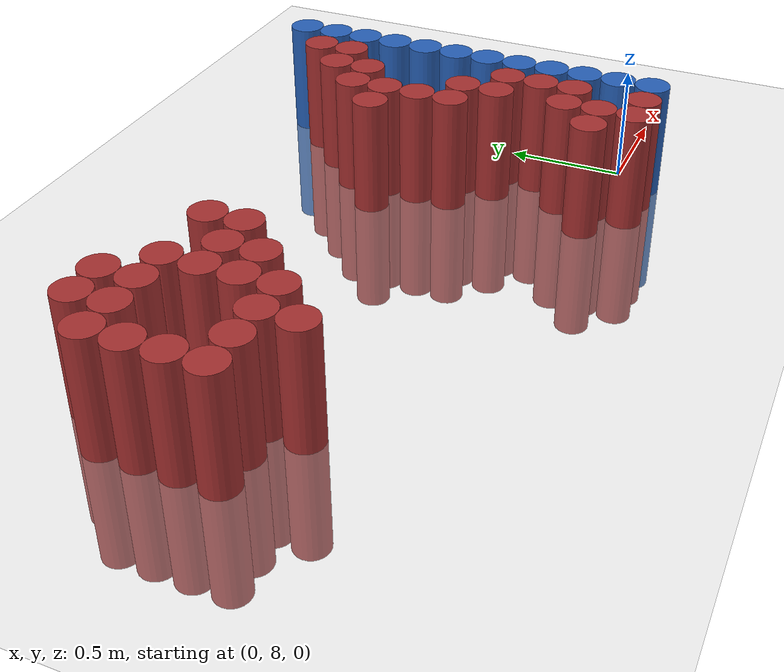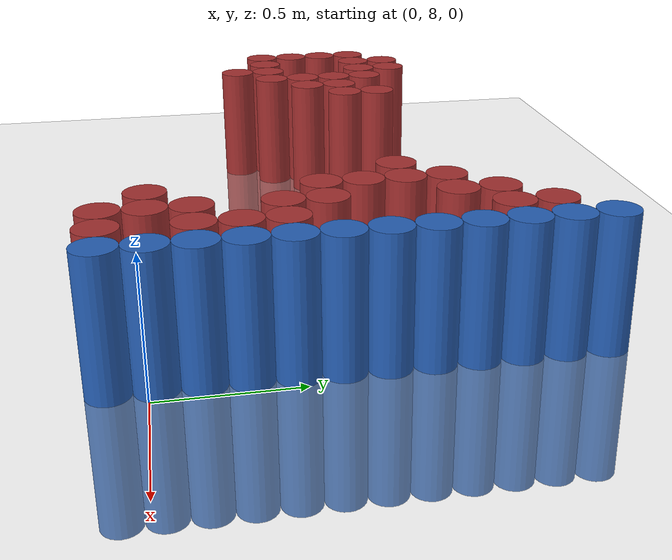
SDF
<sdf version="1.6">
 <world name="default">
  <model name="ground_plane">
   <static>1</static>
   <link name="link">
    <collision name="collision">
     <geometry><plane><normal>0 0 1</normal><size>100 100</size></plane></geometry>
     <surface><friction><ode><mu>100</mu><mu2>50</mu2></ode></friction></surface>
    </collision>
    <visual name="visual">
     <cast_shadows>0</cast_shadows>
     <geometry><plane><normal>0 0 1</normal><size>100 100</size></plane></geometry>
     <material>
      <script><uri>file://media/materials/scripts/gazebo.material</uri><name>Gazebo/Grey</name></script>
     </material>
    </visual>
   </link>
  </model>
  <model name="unit_cylinder_234">
   <static>1</static>
   <pose>-2.475000 8.625000 0.000000 0.000000 0.000000 0.000000</pose>
   <link name="link">
    <inertial>
     <mass>1</mass>
     <inertia><ixx>0.145833</ixx><ixy>0</ixy><ixz>0</ixz><iyy>0.145833</iyy><iyz>0</iyz><izz>0.125</izz></inertia>
    </inertial>
    <collision name="collision">
     <geometry><cylinder><radius>0.075000</radius><length>1</length></cylinder></geometry>
    </collision>
    <visual name="visual">
     <geometry><cylinder><radius>0.075000</radius><length>1</length></cylinder></geometry>
     <material>
      <ambient>0.648000 0.192000 0.192000 1</ambient>
      <diffuse>0.648000 0.192000 0.192000 1</diffuse>
     </material>
     <material>
      <script><name>Gazebo/Grey</name><uri>file://media/materials/scripts/gazebo.material</uri></script>
     </material>
    </visual>
   </link>
  </model>
  <model name="unit_cylinder_235">
   <static>1</static>
   <pose>-2.475000 8.775000 0.000000 0.000000 0.000000 0.000000</pose>
   <link name="link">
    <inertial>
     <mass>1</mass>
     <inertia><ixx>0.145833</ixx><ixy>0</ixy><ixz>0</ixz><iyy>0.145833</iyy><iyz>0</iyz><izz>0.125</izz></inertia>
    </inertial>
    <collision name="collision">
     <geometry><cylinder><radius>0.075000</radius><length>1</length></cylinder></geometry>
    </collision>
    <visual name="visual">
     <geometry><cylinder><radius>0.075000</radius><length>1</length></cylinder></geometry>
     <material>
      <ambient>0.648000 0.192000 0.192000 1</ambient>
      <diffuse>0.648000 0.192000 0.192000 1</diffuse>
     </material>
     <material>
      <script><name>Gazebo/Grey</name><uri>file://media/materials/scripts/gazebo.material</uri></script>
     </material>
    </visual>
   </link>
  </model>
  <model name="unit_cylinder_236">
   <static>1</static>
   <pose>-2.475000 8.925000 0.000000 0.000000 0.000000 0.000000</pose>
   <link name="link">
    <inertial>
     <mass>1</mass>
     <inertia><ixx>0.145833</ixx><ixy>0</ixy><ixz>0</ixz><iyy>0.145833</iyy><iyz>0</iyz><izz>0.125</izz></inertia>
    </inertial>
    <collision name="collision">
     <geometry><cylinder><radius>0.075000</radius><length>1</length></cylinder></geometry>
    </collision>
    <visual name="visual">
     <geometry><cylinder><radius>0.075000</radius><length>1</length></cylinder></geometry>
     <material>
      <ambient>0.648000 0.192000 0.192000 1</ambient>
      <diffuse>0.648000 0.192000 0.192000 1</diffuse>
     </material>
     <material>
      <script><name>Gazebo/Grey</name><uri>file://media/materials/scripts/gazebo.material</uri></script>
     </material>
    </visual>
   </link>
  </model>
  <model name="unit_cylinder_237">
   <static>1</static>
   <pose>-2.475000 9.075000 0.000000 0.000000 0.000000 0.000000</pose>
   <link name="link">
    <inertial>
     <mass>1</mass>
     <inertia><ixx>0.145833</ixx><ixy>0</ixy><ixz>0</ixz><iyy>0.145833</iyy><iyz>0</iyz><izz>0.125</izz></inertia>
    </inertial>
    <collision name="collision">
     <geometry><cylinder><radius>0.075000</radius><length>1</length></cylinder></geometry>
    </collision>
    <visual name="visual">
     <geometry><cylinder><radius>0.075000</radius><length>1</length></cylinder></geometry>
     <material>
      <ambient>0.648000 0.192000 0.192000 1</ambient>
      <diffuse>0.648000 0.192000 0.192000 1</diffuse>
     </material>
     <material>
      <script><name>Gazebo/Grey</name><uri>file://media/materials/scripts/gazebo.material</uri></script>
     </material>
    </visual>
   </link>
  </model>
  <model name="unit_cylinder_241">
   <static>1</static>
   <pose>-2.325000 8.625000 0.000000 0.000000 0.000000 0.000000</pose>
   <link name="link">
    <inertial>
     <mass>1</mass>
     <inertia><ixx>0.145833</ixx><ixy>0</ixy><ixz>0</ixz><iyy>0.145833</iyy><iyz>0</iyz><izz>0.125</izz></inertia>
    </inertial>
    <collision name="collision">
     <geometry><cylinder><radius>0.075000</radius><length>1</length></cylinder></geometry>
    </collision>
    <visual name="visual">
     <geometry><cylinder><radius>0.075000</radius><length>1</length></cylinder></geometry>
     <material>
      <ambient>0.648000 0.192000 0.192000 1</ambient>
      <diffuse>0.648000 0.192000 0.192000 1</diffuse>
     </material>
     <material>
      <script><name>Gazebo/Grey</name><uri>file://media/materials/scripts/gazebo.material</uri></script>
     </material>
    </visual>
   </link>
  </model>
  <model name="unit_cylinder_242">
   <static>1</static>
   <pose>-2.325000 9.075000 0.000000 0.000000 0.000000 0.000000</pose>
   <link name="link">
    <inertial>
     <mass>1</mass>
     <inertia><ixx>0.145833</ixx><ixy>0</ixy><ixz>0</ixz><iyy>0.145833</iyy><iyz>0</iyz><izz>0.125</izz></inertia>
    </inertial>
    <collision name="collision">
     <geometry><cylinder><radius>0.075000</radius><length>1</length></cylinder></geometry>
    </collision>
    <visual name="visual">
     <geometry><cylinder><radius>0.075000</radius><length>1</length></cylinder></geometry>
     <material>
      <ambient>0.648000 0.192000 0.192000 1</ambient>
      <diffuse>0.648000 0.192000 0.192000 1</diffuse>
     </material>
     <material>
      <script><name>Gazebo/Grey</name><uri>file://media/materials/scripts/gazebo.material</uri></script>
     </material>
    </visual>
   </link>
  </model>
  <model name="unit_cylinder_243">
   <static>1</static>
   <pose>-2.325000 9.225000 0.000000 0.000000 0.000000 0.000000</pose>
   <link name="link">
    <inertial>
     <mass>1</mass>
     <inertia><ixx>0.145833</ixx><ixy>0</ixy><ixz>0</ixz><iyy>0.145833</iyy><iyz>0</iyz><izz>0.125</izz></inertia>
    </inertial>
    <collision name="collision">
     <geometry><cylinder><radius>0.075000</radius><length>1</length></cylinder></geometry>
    </collision>
    <visual name="visual">
     <geometry><cylinder><radius>0.075000</radius><length>1</length></cylinder></geometry>
     <material>
      <ambient>0.648000 0.192000 0.192000 1</ambient>
      <diffuse>0.648000 0.192000 0.192000 1</diffuse>
     </material>
     <material>
      <script><name>Gazebo/Grey</name><uri>file://media/materials/scripts/gazebo.material</uri></script>
     </material>
    </visual>
   </link>
  </model>
  <model name="unit_cylinder_248">
   <static>1</static>
   <pose>-2.175000 8.475000 0.000000 0.000000 0.000000 0.000000</pose>
   <link name="link">
    <inertial>
     <mass>1</mass>
     <inertia><ixx>0.145833</ixx><ixy>0</ixy><ixz>0</ixz><iyy>0.145833</iyy><iyz>0</iyz><izz>0.125</izz></inertia>
    </inertial>
    <collision name="collision">
     <geometry><cylinder><radius>0.075000</radius><length>1</length></cylinder></geometry>
    </collision>
    <visual name="visual">
     <geometry><cylinder><radius>0.075000</radius><length>1</length></cylinder></geometry>
     <material>
      <ambient>0.648000 0.192000 0.192000 1</ambient>
      <diffuse>0.648000 0.192000 0.192000 1</diffuse>
     </material>
     <material>
      <script><name>Gazebo/Grey</name><uri>file://media/materials/scripts/gazebo.material</uri></script>
     </material>
    </visual>
   </link>
  </model>
  <model name="unit_cylinder_249">
   <static>1</static>
   <pose>-2.175000 8.625000 0.000000 0.000000 0.000000 0.000000</pose>
   <link name="link">
    <inertial>
     <mass>1</mass>
     <inertia><ixx>0.145833</ixx><ixy>0</ixy><ixz>0</ixz><iyy>0.145833</iyy><iyz>0</iyz><izz>0.125</izz></inertia>
    </inertial>
    <collision name="collision">
     <geometry><cylinder><radius>0.075000</radius><length>1</length></cylinder></geometry>
    </collision>
    <visual name="visual">
     <geometry><cylinder><radius>0.075000</radius><length>1</length></cylinder></geometry>
     <material>
      <ambient>0.648000 0.192000 0.192000 1</ambient>
      <diffuse>0.648000 0.192000 0.192000 1</diffuse>
     </material>
     <material>
      <script><name>Gazebo/Grey</name><uri>file://media/materials/scripts/gazebo.material</uri></script>
     </material>
    </visual>
   </link>
  </model>
  <model name="unit_cylinder_250">
   <static>1</static>
   <pose>-2.175000 9.075000 0.000000 0.000000 0.000000 0.000000</pose>
   <link name="link">
    <inertial>
     <mass>1</mass>
     <inertia><ixx>0.145833</ixx><ixy>0</ixy><ixz>0</ixz><iyy>0.145833</iyy><iyz>0</iyz><izz>0.125</izz></inertia>
    </inertial>
    <collision name="collision">
     <geometry><cylinder><radius>0.075000</radius><length>1</length></cylinder></geometry>
    </collision>
    <visual name="visual">
     <geometry><cylinder><radius>0.075000</radius><length>1</length></cylinder></geometry>
     <material>
      <ambient>0.648000 0.192000 0.192000 1</ambient>
      <diffuse>0.648000 0.192000 0.192000 1</diffuse>
     </material>
     <material>
      <script><name>Gazebo/Grey</name><uri>file://media/materials/scripts/gazebo.material</uri></script>
     </material>
    </visual>
   </link>
  </model>
  <model name="unit_cylinder_251">
   <static>1</static>
   <pose>-2.175000 9.225000 0.000000 0.000000 0.000000 0.000000</pose>
   <link name="link">
    <inertial>
     <mass>1</mass>
     <inertia><ixx>0.145833</ixx><ixy>0</ixy><ixz>0</ixz><iyy>0.145833</iyy><iyz>0</iyz><izz>0.125</izz></inertia>
    </inertial>
    <collision name="collision">
     <geometry><cylinder><radius>0.075000</radius><length>1</length></cylinder></geometry>
    </collision>
    <visual name="visual">
     <geometry><cylinder><radius>0.075000</radius><length>1</length></cylinder></geometry>
     <material>
      <ambient>0.648000 0.192000 0.192000 1</ambient>
      <diffuse>0.648000 0.192000 0.192000 1</diffuse>
     </material>
     <material>
      <script><name>Gazebo/Grey</name><uri>file://media/materials/scripts/gazebo.material</uri></script>
     </material>
    </visual>
   </link>
  </model>
  <model name="unit_cylinder_256">
   <static>1</static>
   <pose>-2.025000 8.625000 0.000000 0.000000 0.000000 0.000000</pose>
   <link name="link">
    <inertial>
     <mass>1</mass>
     <inertia><ixx>0.145833</ixx><ixy>0</ixy><ixz>0</ixz><iyy>0.145833</iyy><iyz>0</iyz><izz>0.125</izz></inertia>
    </inertial>
    <collision name="collision">
     <geometry><cylinder><radius>0.075000</radius><length>1</length></cylinder></geometry>
    </collision>
    <visual name="visual">
     <geometry><cylinder><radius>0.075000</radius><length>1</length></cylinder></geometry>
     <material>
      <ambient>0.648000 0.192000 0.192000 1</ambient>
      <diffuse>0.648000 0.192000 0.192000 1</diffuse>
     </material>
     <material>
      <script><name>Gazebo/Grey</name><uri>file://media/materials/scripts/gazebo.material</uri></script>
     </material>
    </visual>
   </link>
  </model>
  <model name="unit_cylinder_257">
   <static>1</static>
   <pose>-2.025000 8.775000 0.000000 0.000000 0.000000 0.000000</pose>
   <link name="link">
    <inertial>
     <mass>1</mass>
     <inertia><ixx>0.145833</ixx><ixy>0</ixy><ixz>0</ixz><iyy>0.145833</iyy><iyz>0</iyz><izz>0.125</izz></inertia>
    </inertial>
    <collision name="collision">
     <geometry><cylinder><radius>0.075000</radius><length>1</length></cylinder></geometry>
    </collision>
    <visual name="visual">
     <geometry><cylinder><radius>0.075000</radius><length>1</length></cylinder></geometry>
     <material>
      <ambient>0.648000 0.192000 0.192000 1</ambient>
      <diffuse>0.648000 0.192000 0.192000 1</diffuse>
     </material>
     <material>
      <script><name>Gazebo/Grey</name><uri>file://media/materials/scripts/gazebo.material</uri></script>
     </material>
    </visual>
   </link>
  </model>
  <model name="unit_cylinder_258">
   <static>1</static>
   <pose>-2.025000 8.925000 0.000000 0.000000 0.000000 0.000000</pose>
   <link name="link">
    <inertial>
     <mass>1</mass>
     <inertia><ixx>0.145833</ixx><ixy>0</ixy><ixz>0</ixz><iyy>0.145833</iyy><iyz>0</iyz><izz>0.125</izz></inertia>
    </inertial>
    <collision name="collision">
     <geometry><cylinder><radius>0.075000</radius><length>1</length></cylinder></geometry>
    </collision>
    <visual name="visual">
     <geometry><cylinder><radius>0.075000</radius><length>1</length></cylinder></geometry>
     <material>
      <ambient>0.648000 0.192000 0.192000 1</ambient>
      <diffuse>0.648000 0.192000 0.192000 1</diffuse>
     </material>
     <material>
      <script><name>Gazebo/Grey</name><uri>file://media/materials/scripts/gazebo.material</uri></script>
     </material>
    </visual>
   </link>
  </model>
  <model name="unit_cylinder_259">
   <static>1</static>
   <pose>-2.025000 9.075000 0.000000 0.000000 0.000000 0.000000</pose>
   <link name="link">
    <inertial>
     <mass>1</mass>
     <inertia><ixx>0.145833</ixx><ixy>0</ixy><ixz>0</ixz><iyy>0.145833</iyy><iyz>0</iyz><izz>0.125</izz></inertia>
    </inertial>
    <collision name="collision">
     <geometry><cylinder><radius>0.075000</radius><length>1</length></cylinder></geometry>
    </collision>
    <visual name="visual">
     <geometry><cylinder><radius>0.075000</radius><length>1</length></cylinder></geometry>
     <material>
      <ambient>0.648000 0.192000 0.192000 1</ambient>
      <diffuse>0.648000 0.192000 0.192000 1</diffuse>
     </material>
     <material>
      <script><name>Gazebo/Grey</name><uri>file://media/materials/scripts/gazebo.material</uri></script>
     </material>
    </visual>
   </link>
  </model>
  <model name="unit_cylinder_267">
   <static>1</static>
   <pose>-1.875000 8.775000 0.000000 0.000000 0.000000 0.000000</pose>
   <link name="link">
    <inertial>
     <mass>1</mass>
     <inertia><ixx>0.145833</ixx><ixy>0</ixy><ixz>0</ixz><iyy>0.145833</iyy><iyz>0</iyz><izz>0.125</izz></inertia>
    </inertial>
    <collision name="collision">
     <geometry><cylinder><radius>0.075000</radius><length>1</length></cylinder></geometry>
    </collision>
    <visual name="visual">
     <geometry><cylinder><radius>0.075000</radius><length>1</length></cylinder></geometry>
     <material>
      <ambient>0.648000 0.192000 0.192000 1</ambient>
      <diffuse>0.648000 0.192000 0.192000 1</diffuse>
     </material>
     <material>
      <script><name>Gazebo/Grey</name><uri>file://media/materials/scripts/gazebo.material</uri></script>
     </material>
    </visual>
   </link>
  </model>
  <model name="unit_cylinder_268">
   <static>1</static>
   <pose>-1.875000 8.925000 0.000000 0.000000 0.000000 0.000000</pose>
   <link name="link">
    <inertial>
     <mass>1</mass>
     <inertia><ixx>0.145833</ixx><ixy>0</ixy><ixz>0</ixz><iyy>0.145833</iyy><iyz>0</iyz><izz>0.125</izz></inertia>
    </inertial>
    <collision name="collision">
     <geometry><cylinder><radius>0.075000</radius><length>1</length></cylinder></geometry>
    </collision>
    <visual name="visual">
     <geometry><cylinder><radius>0.075000</radius><length>1</length></cylinder></geometry>
     <material>
      <ambient>0.648000 0.192000 0.192000 1</ambient>
      <diffuse>0.648000 0.192000 0.192000 1</diffuse>
     </material>
     <material>
      <script><name>Gazebo/Grey</name><uri>file://media/materials/scripts/gazebo.material</uri></script>
     </material>
    </visual>
   </link>
  </model>
  <model name="unit_cylinder_274">
   <static>1</static>
   <pose>-1.725000 8.925000 0.000000 0.000000 0.000000 0.000000</pose>
   <link name="link">
    <inertial>
     <mass>1</mass>
     <inertia><ixx>0.145833</ixx><ixy>0</ixy><ixz>0</ixz><iyy>0.145833</iyy><iyz>0</iyz><izz>0.125</izz></inertia>
    </inertial>
    <collision name="collision">
     <geometry><cylinder><radius>0.075000</radius><length>1</length></cylinder></geometry>
    </collision>
    <visual name="visual">
     <geometry><cylinder><radius>0.075000</radius><length>1</length></cylinder></geometry>
     <material>
      <ambient>0.648000 0.192000 0.192000 1</ambient>
      <diffuse>0.648000 0.192000 0.192000 1</diffuse>
     </material>
     <material>
      <script><name>Gazebo/Grey</name><uri>file://media/materials/scripts/gazebo.material</uri></script>
     </material>
    </visual>
   </link>
  </model>
  <model name="unit_cylinder_275">
   <static>1</static>
   <pose>-1.725000 9.075000 0.000000 0.000000 0.000000 0.000000</pose>
   <link name="link">
    <inertial>
     <mass>1</mass>
     <inertia><ixx>0.145833</ixx><ixy>0</ixy><ixz>0</ixz><iyy>0.145833</iyy><iyz>0</iyz><izz>0.125</izz></inertia>
    </inertial>
    <collision name="collision">
     <geometry><cylinder><radius>0.075000</radius><length>1</length></cylinder></geometry>
    </collision>
    <visual name="visual">
     <geometry><cylinder><radius>0.075000</radius><length>1</length></cylinder></geometry>
     <material>
      <ambient>0.648000 0.192000 0.192000 1</ambient>
      <diffuse>0.648000 0.192000 0.192000 1</diffuse>
     </material>
     <material>
      <script><name>Gazebo/Grey</name><uri>file://media/materials/scripts/gazebo.material</uri></script>
     </material>
    </visual>
   </link>
  </model>
  <model name="unit_cylinder_283">
   <static>1</static>
   <pose>-0.675000 8.925000 0.000000 0.000000 0.000000 0.000000</pose>
   <link name="link">
    <inertial>
     <mass>1</mass>
     <inertia><ixx>0.145833</ixx><ixy>0</ixy><ixz>0</ixz><iyy>0.145833</iyy><iyz>0</iyz><izz>0.125</izz></inertia>
    </inertial>
    <collision name="collision">
     <geometry><cylinder><radius>0.075000</radius><length>1</length></cylinder></geometry>
    </collision>
    <visual name="visual">
     <geometry><cylinder><radius>0.075000</radius><length>1</length></cylinder></geometry>
     <material>
      <ambient>0.648000 0.192000 0.192000 1</ambient>
      <diffuse>0.648000 0.192000 0.192000 1</diffuse>
     </material>
     <material>
      <script><name>Gazebo/Grey</name><uri>file://media/materials/scripts/gazebo.material</uri></script>
     </material>
    </visual>
   </link>
  </model>
  <model name="unit_cylinder_288">
   <static>1</static>
   <pose>-0.525000 8.025000 0.000000 0.000000 0.000000 0.000000</pose>
   <link name="link">
    <inertial>
     <mass>1</mass>
     <inertia><ixx>0.145833</ixx><ixy>0</ixy><ixz>0</ixz><iyy>0.145833</iyy><iyz>0</iyz><izz>0.125</izz></inertia>
    </inertial>
    <collision name="collision">
     <geometry><cylinder><radius>0.075000</radius><length>1</length></cylinder></geometry>
    </collision>
    <visual name="visual">
     <geometry><cylinder><radius>0.075000</radius><length>1</length></cylinder></geometry>
     <material>
      <ambient>0.648000 0.192000 0.192000 1</ambient>
      <diffuse>0.648000 0.192000 0.192000 1</diffuse>
     </material>
     <material>
      <script><name>Gazebo/Grey</name><uri>file://media/materials/scripts/gazebo.material</uri></script>
     </material>
    </visual>
   </link>
  </model>
  <model name="unit_cylinder_289">
   <static>1</static>
   <pose>-0.525000 8.625000 0.000000 0.000000 0.000000 0.000000</pose>
   <link name="link">
    <inertial>
     <mass>1</mass>
     <inertia><ixx>0.145833</ixx><ixy>0</ixy><ixz>0</ixz><iyy>0.145833</iyy><iyz>0</iyz><izz>0.125</izz></inertia>
    </inertial>
    <collision name="collision">
     <geometry><cylinder><radius>0.075000</radius><length>1</length></cylinder></geometry>
    </collision>
    <visual name="visual">
     <geometry><cylinder><radius>0.075000</radius><length>1</length></cylinder></geometry>
     <material>
      <ambient>0.648000 0.192000 0.192000 1</ambient>
      <diffuse>0.648000 0.192000 0.192000 1</diffuse>
     </material>
     <material>
      <script><name>Gazebo/Grey</name><uri>file://media/materials/scripts/gazebo.material</uri></script>
     </material>
    </visual>
   </link>
  </model>
  <model name="unit_cylinder_290">
   <static>1</static>
   <pose>-0.525000 8.775000 0.000000 0.000000 0.000000 0.000000</pose>
   <link name="link">
    <inertial>
     <mass>1</mass>
     <inertia><ixx>0.145833</ixx><ixy>0</ixy><ixz>0</ixz><iyy>0.145833</iyy><iyz>0</iyz><izz>0.125</izz></inertia>
    </inertial>
    <collision name="collision">
     <geometry><cylinder><radius>0.075000</radius><length>1</length></cylinder></geometry>
    </collision>
    <visual name="visual">
     <geometry><cylinder><radius>0.075000</radius><length>1</length></cylinder></geometry>
     <material>
      <ambient>0.648000 0.192000 0.192000 1</ambient>
      <diffuse>0.648000 0.192000 0.192000 1</diffuse>
     </material>
     <material>
      <script><name>Gazebo/Grey</name><uri>file://media/materials/scripts/gazebo.material</uri></script>
     </material>
    </visual>
   </link>
  </model>
  <model name="unit_cylinder_291">
   <static>1</static>
   <pose>-0.525000 8.925000 0.000000 0.000000 0.000000 0.000000</pose>
   <link name="link">
    <inertial>
     <mass>1</mass>
     <inertia><ixx>0.145833</ixx><ixy>0</ixy><ixz>0</ixz><iyy>0.145833</iyy><iyz>0</iyz><izz>0.125</izz></inertia>
    </inertial>
    <collision name="collision">
     <geometry><cylinder><radius>0.075000</radius><length>1</length></cylinder></geometry>
    </collision>
    <visual name="visual">
     <geometry><cylinder><radius>0.075000</radius><length>1</length></cylinder></geometry>
     <material>
      <ambient>0.648000 0.192000 0.192000 1</ambient>
      <diffuse>0.648000 0.192000 0.192000 1</diffuse>
     </material>
     <material>
      <script><name>Gazebo/Grey</name><uri>file://media/materials/scripts/gazebo.material</uri></script>
     </material>
    </visual>
   </link>
  </model>
  <model name="unit_cylinder_292">
   <static>1</static>
   <pose>-0.525000 9.075000 0.000000 0.000000 0.000000 0.000000</pose>
   <link name="link">
    <inertial>
     <mass>1</mass>
     <inertia><ixx>0.145833</ixx><ixy>0</ixy><ixz>0</ixz><iyy>0.145833</iyy><iyz>0</iyz><izz>0.125</izz></inertia>
    </inertial>
    <collision name="collision">
     <geometry><cylinder><radius>0.075000</radius><length>1</length></cylinder></geometry>
    </collision>
    <visual name="visual">
     <geometry><cylinder><radius>0.075000</radius><length>1</length></cylinder></geometry>
     <material>
      <ambient>0.648000 0.192000 0.192000 1</ambient>
      <diffuse>0.648000 0.192000 0.192000 1</diffuse>
     </material>
     <material>
      <script><name>Gazebo/Grey</name><uri>file://media/materials/scripts/gazebo.material</uri></script>
     </material>
    </visual>
   </link>
  </model>
  <model name="unit_cylinder_296">
   <static>1</static>
   <pose>-0.375000 7.875000 0.000000 0.000000 0.000000 0.000000</pose>
   <link name="link">
    <inertial>
     <mass>1</mass>
     <inertia><ixx>0.145833</ixx><ixy>0</ixy><ixz>0</ixz><iyy>0.145833</iyy><iyz>0</iyz><izz>0.125</izz></inertia>
    </inertial>
    <collision name="collision">
     <geometry><cylinder><radius>0.075000</radius><length>1</length></cylinder></geometry>
    </collision>
    <visual name="visual">
     <geometry><cylinder><radius>0.075000</radius><length>1</length></cylinder></geometry>
     <material>
      <ambient>0.648000 0.192000 0.192000 1</ambient>
      <diffuse>0.648000 0.192000 0.192000 1</diffuse>
     </material>
     <material>
      <script><name>Gazebo/Grey</name><uri>file://media/materials/scripts/gazebo.material</uri></script>
     </material>
    </visual>
   </link>
  </model>
  <model name="unit_cylinder_297">
   <static>1</static>
   <pose>-0.375000 8.025000 0.000000 0.000000 0.000000 0.000000</pose>
   <link name="link">
    <inertial>
     <mass>1</mass>
     <inertia><ixx>0.145833</ixx><ixy>0</ixy><ixz>0</ixz><iyy>0.145833</iyy><iyz>0</iyz><izz>0.125</izz></inertia>
    </inertial>
    <collision name="collision">
     <geometry><cylinder><radius>0.075000</radius><length>1</length></cylinder></geometry>
    </collision>
    <visual name="visual">
     <geometry><cylinder><radius>0.075000</radius><length>1</length></cylinder></geometry>
     <material>
      <ambient>0.648000 0.192000 0.192000 1</ambient>
      <diffuse>0.648000 0.192000 0.192000 1</diffuse>
     </material>
     <material>
      <script><name>Gazebo/Grey</name><uri>file://media/materials/scripts/gazebo.material</uri></script>
     </material>
    </visual>
   </link>
  </model>
  <model name="unit_cylinder_298">
   <static>1</static>
   <pose>-0.375000 8.175000 0.000000 0.000000 0.000000 0.000000</pose>
   <link name="link">
    <inertial>
     <mass>1</mass>
     <inertia><ixx>0.145833</ixx><ixy>0</ixy><ixz>0</ixz><iyy>0.145833</iyy><iyz>0</iyz><izz>0.125</izz></inertia>
    </inertial>
    <collision name="collision">
     <geometry><cylinder><radius>0.075000</radius><length>1</length></cylinder></geometry>
    </collision>
    <visual name="visual">
     <geometry><cylinder><radius>0.075000</radius><length>1</length></cylinder></geometry>
     <material>
      <ambient>0.648000 0.192000 0.192000 1</ambient>
      <diffuse>0.648000 0.192000 0.192000 1</diffuse>
     </material>
     <material>
      <script><name>Gazebo/Grey</name><uri>file://media/materials/scripts/gazebo.material</uri></script>
     </material>
    </visual>
   </link>
  </model>
  <model name="unit_cylinder_299">
   <static>1</static>
   <pose>-0.375000 8.475000 0.000000 0.000000 0.000000 0.000000</pose>
   <link name="link">
    <inertial>
     <mass>1</mass>
     <inertia><ixx>0.145833</ixx><ixy>0</ixy><ixz>0</ixz><iyy>0.145833</iyy><iyz>0</iyz><izz>0.125</izz></inertia>
    </inertial>
    <collision name="collision">
     <geometry><cylinder><radius>0.075000</radius><length>1</length></cylinder></geometry>
    </collision>
    <visual name="visual">
     <geometry><cylinder><radius>0.075000</radius><length>1</length></cylinder></geometry>
     <material>
      <ambient>0.648000 0.192000 0.192000 1</ambient>
      <diffuse>0.648000 0.192000 0.192000 1</diffuse>
     </material>
     <material>
      <script><name>Gazebo/Grey</name><uri>file://media/materials/scripts/gazebo.material</uri></script>
     </material>
    </visual>
   </link>
  </model>
  <model name="unit_cylinder_300">
   <static>1</static>
   <pose>-0.375000 8.625000 0.000000 0.000000 0.000000 0.000000</pose>
   <link name="link">
    <inertial>
     <mass>1</mass>
     <inertia><ixx>0.145833</ixx><ixy>0</ixy><ixz>0</ixz><iyy>0.145833</iyy><iyz>0</iyz><izz>0.125</izz></inertia>
    </inertial>
    <collision name="collision">
     <geometry><cylinder><radius>0.075000</radius><length>1</length></cylinder></geometry>
    </collision>
    <visual name="visual">
     <geometry><cylinder><radius>0.075000</radius><length>1</length></cylinder></geometry>
     <material>
      <ambient>0.648000 0.192000 0.192000 1</ambient>
      <diffuse>0.648000 0.192000 0.192000 1</diffuse>
     </material>
     <material>
      <script><name>Gazebo/Grey</name><uri>file://media/materials/scripts/gazebo.material</uri></script>
     </material>
    </visual>
   </link>
  </model>
  <model name="unit_cylinder_301">
   <static>1</static>
   <pose>-0.375000 9.075000 0.000000 0.000000 0.000000 0.000000</pose>
   <link name="link">
    <inertial>
     <mass>1</mass>
     <inertia><ixx>0.145833</ixx><ixy>0</ixy><ixz>0</ixz><iyy>0.145833</iyy><iyz>0</iyz><izz>0.125</izz></inertia>
    </inertial>
    <collision name="collision">
     <geometry><cylinder><radius>0.075000</radius><length>1</length></cylinder></geometry>
    </collision>
    <visual name="visual">
     <geometry><cylinder><radius>0.075000</radius><length>1</length></cylinder></geometry>
     <material>
      <ambient>0.648000 0.192000 0.192000 1</ambient>
      <diffuse>0.648000 0.192000 0.192000 1</diffuse>
     </material>
     <material>
      <script><name>Gazebo/Grey</name><uri>file://media/materials/scripts/gazebo.material</uri></script>
     </material>
    </visual>
   </link>
  </model>
  <model name="unit_cylinder_302">
   <static>1</static>
   <pose>-0.375000 9.225000 0.000000 0.000000 0.000000 0.000000</pose>
   <link name="link">
    <inertial>
     <mass>1</mass>
     <inertia><ixx>0.145833</ixx><ixy>0</ixy><ixz>0</ixz><iyy>0.145833</iyy><iyz>0</iyz><izz>0.125</izz></inertia>
    </inertial>
    <collision name="collision">
     <geometry><cylinder><radius>0.075000</radius><length>1</length></cylinder></geometry>
    </collision>
    <visual name="visual">
     <geometry><cylinder><radius>0.075000</radius><length>1</length></cylinder></geometry>
     <material>
      <ambient>0.648000 0.192000 0.192000 1</ambient>
      <diffuse>0.648000 0.192000 0.192000 1</diffuse>
     </material>
     <material>
      <script><name>Gazebo/Grey</name><uri>file://media/materials/scripts/gazebo.material</uri></script>
     </material>
    </visual>
   </link>
  </model>
  <model name="unit_cylinder_314">
   <static>1</static>
   <pose>-0.225000 7.875000 0.000000 0.000000 0.000000 0.000000</pose>
   <link name="link">
    <inertial>
     <mass>1</mass>
     <inertia><ixx>0.145833</ixx><ixy>0</ixy><ixz>0</ixz><iyy>0.145833</iyy><iyz>0</iyz><izz>0.125</izz></inertia>
    </inertial>
    <collision name="collision">
     <geometry><cylinder><radius>0.075000</radius><length>1</length></cylinder></geometry>
    </collision>
    <visual name="visual">
     <geometry><cylinder><radius>0.075000</radius><length>1</length></cylinder></geometry>
     <material>
      <ambient>0.648000 0.192000 0.192000 1</ambient>
      <diffuse>0.648000 0.192000 0.192000 1</diffuse>
     </material>
     <material>
      <script><name>Gazebo/Grey</name><uri>file://media/materials/scripts/gazebo.material</uri></script>
     </material>
    </visual>
   </link>
  </model>
  <model name="unit_cylinder_315">
   <static>1</static>
   <pose>-0.225000 8.175000 0.000000 0.000000 0.000000 0.000000</pose>
   <link name="link">
    <inertial>
     <mass>1</mass>
     <inertia><ixx>0.145833</ixx><ixy>0</ixy><ixz>0</ixz><iyy>0.145833</iyy><iyz>0</iyz><izz>0.125</izz></inertia>
    </inertial>
    <collision name="collision">
     <geometry><cylinder><radius>0.075000</radius><length>1</length></cylinder></geometry>
    </collision>
    <visual name="visual">
     <geometry><cylinder><radius>0.075000</radius><length>1</length></cylinder></geometry>
     <material>
      <ambient>0.648000 0.192000 0.192000 1</ambient>
      <diffuse>0.648000 0.192000 0.192000 1</diffuse>
     </material>
     <material>
      <script><name>Gazebo/Grey</name><uri>file://media/materials/scripts/gazebo.material</uri></script>
     </material>
    </visual>
   </link>
  </model>
  <model name="unit_cylinder_316">
   <static>1</static>
   <pose>-0.225000 8.325000 0.000000 0.000000 0.000000 0.000000</pose>
   <link name="link">
    <inertial>
     <mass>1</mass>
     <inertia><ixx>0.145833</ixx><ixy>0</ixy><ixz>0</ixz><iyy>0.145833</iyy><iyz>0</iyz><izz>0.125</izz></inertia>
    </inertial>
    <collision name="collision">
     <geometry><cylinder><radius>0.075000</radius><length>1</length></cylinder></geometry>
    </collision>
    <visual name="visual">
     <geometry><cylinder><radius>0.075000</radius><length>1</length></cylinder></geometry>
     <material>
      <ambient>0.648000 0.192000 0.192000 1</ambient>
      <diffuse>0.648000 0.192000 0.192000 1</diffuse>
     </material>
     <material>
      <script><name>Gazebo/Grey</name><uri>file://media/materials/scripts/gazebo.material</uri></script>
     </material>
    </visual>
   </link>
  </model>
  <model name="unit_cylinder_317">
   <static>1</static>
   <pose>-0.225000 8.475000 0.000000 0.000000 0.000000 0.000000</pose>
   <link name="link">
    <inertial>
     <mass>1</mass>
     <inertia><ixx>0.145833</ixx><ixy>0</ixy><ixz>0</ixz><iyy>0.145833</iyy><iyz>0</iyz><izz>0.125</izz></inertia>
    </inertial>
    <collision name="collision">
     <geometry><cylinder><radius>0.075000</radius><length>1</length></cylinder></geometry>
    </collision>
    <visual name="visual">
     <geometry><cylinder><radius>0.075000</radius><length>1</length></cylinder></geometry>
     <material>
      <ambient>0.648000 0.192000 0.192000 1</ambient>
      <diffuse>0.648000 0.192000 0.192000 1</diffuse>
     </material>
     <material>
      <script><name>Gazebo/Grey</name><uri>file://media/materials/scripts/gazebo.material</uri></script>
     </material>
    </visual>
   </link>
  </model>
  <model name="unit_cylinder_318">
   <static>1</static>
   <pose>-0.225000 9.225000 0.000000 0.000000 0.000000 0.000000</pose>
   <link name="link">
    <inertial>
     <mass>1</mass>
     <inertia><ixx>0.145833</ixx><ixy>0</ixy><ixz>0</ixz><iyy>0.145833</iyy><iyz>0</iyz><izz>0.125</izz></inertia>
    </inertial>
    <collision name="collision">
     <geometry><cylinder><radius>0.075000</radius><length>1</length></cylinder></geometry>
    </collision>
    <visual name="visual">
     <geometry><cylinder><radius>0.075000</radius><length>1</length></cylinder></geometry>
     <material>
      <ambient>0.648000 0.192000 0.192000 1</ambient>
      <diffuse>0.648000 0.192000 0.192000 1</diffuse>
     </material>
     <material>
      <script><name>Gazebo/Grey</name><uri>file://media/materials/scripts/gazebo.material</uri></script>
     </material>
    </visual>
   </link>
  </model>
  <model name="unit_cylinder_319">
   <static>1</static>
   <pose>-0.225000 9.375000 0.000000 0.000000 0.000000 0.000000</pose>
   <link name="link">
    <inertial>
     <mass>1</mass>
     <inertia><ixx>0.145833</ixx><ixy>0</ixy><ixz>0</ixz><iyy>0.145833</iyy><iyz>0</iyz><izz>0.125</izz></inertia>
    </inertial>
    <collision name="collision">
     <geometry><cylinder><radius>0.075000</radius><length>1</length></cylinder></geometry>
    </collision>
    <visual name="visual">
     <geometry><cylinder><radius>0.075000</radius><length>1</length></cylinder></geometry>
     <material>
      <ambient>0.648000 0.192000 0.192000 1</ambient>
      <diffuse>0.648000 0.192000 0.192000 1</diffuse>
     </material>
     <material>
      <script><name>Gazebo/Grey</name><uri>file://media/materials/scripts/gazebo.material</uri></script>
     </material>
    </visual>
   </link>
  </model>
  <model name="unit_cylinder_338">
   <static>1</static>
   <pose>-0.075000 7.875000 0.000000 0.000000 0.000000 0.000000</pose>
   <link name="link">
    <inertial>
     <mass>1</mass>
     <inertia><ixx>0.145833</ixx><ixy>0</ixy><ixz>0</ixz><iyy>0.145833</iyy><iyz>0</iyz><izz>0.125</izz></inertia>
    </inertial>
    <collision name="collision">
     <geometry><cylinder><radius>0.075000</radius><length>1</length></cylinder></geometry>
    </collision>
    <visual name="visual">
     <geometry><cylinder><radius>0.075000</radius><length>1</length></cylinder></geometry>
     <material>
      <ambient>0.152000 0.379000 0.720000 1</ambient>
      <diffuse>0.152000 0.379000 0.720000 1</diffuse>
     </material>
     <material>
      <script><name>Gazebo/Grey</name><uri>file://media/materials/scripts/gazebo.material</uri></script>
     </material>
    </visual>
   </link>
  </model>
  <model name="unit_cylinder_339">
   <static>1</static>
   <pose>-0.075000 8.025000 0.000000 0.000000 0.000000 0.000000</pose>
   <link name="link">
    <inertial>
     <mass>1</mass>
     <inertia><ixx>0.145833</ixx><ixy>0</ixy><ixz>0</ixz><iyy>0.145833</iyy><iyz>0</iyz><izz>0.125</izz></inertia>
    </inertial>
    <collision name="collision">
     <geometry><cylinder><radius>0.075000</radius><length>1</length></cylinder></geometry>
    </collision>
    <visual name="visual">
     <geometry><cylinder><radius>0.075000</radius><length>1</length></cylinder></geometry>
     <material>
      <ambient>0.152000 0.379000 0.720000 1</ambient>
      <diffuse>0.152000 0.379000 0.720000 1</diffuse>
     </material>
     <material>
      <script><name>Gazebo/Grey</name><uri>file://media/materials/scripts/gazebo.material</uri></script>
     </material>
    </visual>
   </link>
  </model>
  <model name="unit_cylinder_340">
   <static>1</static>
   <pose>-0.075000 8.175000 0.000000 0.000000 0.000000 0.000000</pose>
   <link name="link">
    <inertial>
     <mass>1</mass>
     <inertia><ixx>0.145833</ixx><ixy>0</ixy><ixz>0</ixz><iyy>0.145833</iyy><iyz>0</iyz><izz>0.125</izz></inertia>
    </inertial>
    <collision name="collision">
     <geometry><cylinder><radius>0.075000</radius><length>1</length></cylinder></geometry>
    </collision>
    <visual name="visual">
     <geometry><cylinder><radius>0.075000</radius><length>1</length></cylinder></geometry>
     <material>
      <ambient>0.152000 0.379000 0.720000 1</ambient>
      <diffuse>0.152000 0.379000 0.720000 1</diffuse>
     </material>
     <material>
      <script><name>Gazebo/Grey</name><uri>file://media/materials/scripts/gazebo.material</uri></script>
     </material>
    </visual>
   </link>
  </model>
  <model name="unit_cylinder_341">
   <static>1</static>
   <pose>-0.075000 8.325000 0.000000 0.000000 0.000000 0.000000</pose>
   <link name="link">
    <inertial>
     <mass>1</mass>
     <inertia><ixx>0.145833</ixx><ixy>0</ixy><ixz>0</ixz><iyy>0.145833</iyy><iyz>0</iyz><izz>0.125</izz></inertia>
    </inertial>
    <collision name="collision">
     <geometry><cylinder><radius>0.075000</radius><length>1</length></cylinder></geometry>
    </collision>
    <visual name="visual">
     <geometry><cylinder><radius>0.075000</radius><length>1</length></cylinder></geometry>
     <material>
      <ambient>0.152000 0.379000 0.720000 1</ambient>
      <diffuse>0.152000 0.379000 0.720000 1</diffuse>
     </material>
     <material>
      <script><name>Gazebo/Grey</name><uri>file://media/materials/scripts/gazebo.material</uri></script>
     </material>
    </visual>
   </link>
  </model>
  <model name="unit_cylinder_342">
   <static>1</static>
   <pose>-0.075000 8.475000 0.000000 0.000000 0.000000 0.000000</pose>
   <link name="link">
    <inertial>
     <mass>1</mass>
     <inertia><ixx>0.145833</ixx><ixy>0</ixy><ixz>0</ixz><iyy>0.145833</iyy><iyz>0</iyz><izz>0.125</izz></inertia>
    </inertial>
    <collision name="collision">
     <geometry><cylinder><radius>0.075000</radius><length>1</length></cylinder></geometry>
    </collision>
    <visual name="visual">
     <geometry><cylinder><radius>0.075000</radius><length>1</length></cylinder></geometry>
     <material>
      <ambient>0.152000 0.379000 0.720000 1</ambient>
      <diffuse>0.152000 0.379000 0.720000 1</diffuse>
     </material>
     <material>
      <script><name>Gazebo/Grey</name><uri>file://media/materials/scripts/gazebo.material</uri></script>
     </material>
    </visual>
   </link>
  </model>
  <model name="unit_cylinder_343">
   <static>1</static>
   <pose>-0.075000 8.625000 0.000000 0.000000 0.000000 0.000000</pose>
   <link name="link">
    <inertial>
     <mass>1</mass>
     <inertia><ixx>0.145833</ixx><ixy>0</ixy><ixz>0</ixz><iyy>0.145833</iyy><iyz>0</iyz><izz>0.125</izz></inertia>
    </inertial>
    <collision name="collision">
     <geometry><cylinder><radius>0.075000</radius><length>1</length></cylinder></geometry>
    </collision>
    <visual name="visual">
     <geometry><cylinder><radius>0.075000</radius><length>1</length></cylinder></geometry>
     <material>
      <ambient>0.152000 0.379000 0.720000 1</ambient>
      <diffuse>0.152000 0.379000 0.720000 1</diffuse>
     </material>
     <material>
      <script><name>Gazebo/Grey</name><uri>file://media/materials/scripts/gazebo.material</uri></script>
     </material>
    </visual>
   </link>
  </model>
  <model name="unit_cylinder_344">
   <static>1</static>
   <pose>-0.075000 8.775000 0.000000 0.000000 0.000000 0.000000</pose>
   <link name="link">
    <inertial>
     <mass>1</mass>
     <inertia><ixx>0.145833</ixx><ixy>0</ixy><ixz>0</ixz><iyy>0.145833</iyy><iyz>0</iyz><izz>0.125</izz></inertia>
    </inertial>
    <collision name="collision">
     <geometry><cylinder><radius>0.075000</radius><length>1</length></cylinder></geometry>
    </collision>
    <visual name="visual">
     <geometry><cylinder><radius>0.075000</radius><length>1</length></cylinder></geometry>
     <material>
      <ambient>0.152000 0.379000 0.720000 1</ambient>
      <diffuse>0.152000 0.379000 0.720000 1</diffuse>
     </material>
     <material>
      <script><name>Gazebo/Grey</name><uri>file://media/materials/scripts/gazebo.material</uri></script>
     </material>
    </visual>
   </link>
  </model>
  <model name="unit_cylinder_345">
   <static>1</static>
   <pose>-0.075000 8.925000 0.000000 0.000000 0.000000 0.000000</pose>
   <link name="link">
    <inertial>
     <mass>1</mass>
     <inertia><ixx>0.145833</ixx><ixy>0</ixy><ixz>0</ixz><iyy>0.145833</iyy><iyz>0</iyz><izz>0.125</izz></inertia>
    </inertial>
    <collision name="collision">
     <geometry><cylinder><radius>0.075000</radius><length>1</length></cylinder></geometry>
    </collision>
    <visual name="visual">
     <geometry><cylinder><radius>0.075000</radius><length>1</length></cylinder></geometry>
     <material>
      <ambient>0.152000 0.379000 0.720000 1</ambient>
      <diffuse>0.152000 0.379000 0.720000 1</diffuse>
     </material>
     <material>
      <script><name>Gazebo/Grey</name><uri>file://media/materials/scripts/gazebo.material</uri></script>
     </material>
    </visual>
   </link>
  </model>
  <model name="unit_cylinder_346">
   <static>1</static>
   <pose>-0.075000 9.075000 0.000000 0.000000 0.000000 0.000000</pose>
   <link name="link">
    <inertial>
     <mass>1</mass>
     <inertia><ixx>0.145833</ixx><ixy>0</ixy><ixz>0</ixz><iyy>0.145833</iyy><iyz>0</iyz><izz>0.125</izz></inertia>
    </inertial>
    <collision name="collision">
     <geometry><cylinder><radius>0.075000</radius><length>1</length></cylinder></geometry>
    </collision>
    <visual name="visual">
     <geometry><cylinder><radius>0.075000</radius><length>1</length></cylinder></geometry>
     <material>
      <ambient>0.152000 0.379000 0.720000 1</ambient>
      <diffuse>0.152000 0.379000 0.720000 1</diffuse>
     </material>
     <material>
      <script><name>Gazebo/Grey</name><uri>file://media/materials/scripts/gazebo.material</uri></script>
     </material>
    </visual>
   </link>
  </model>
  <model name="unit_cylinder_347">
   <static>1</static>
   <pose>-0.075000 9.225000 0.000000 0.000000 0.000000 0.000000</pose>
   <link name="link">
    <inertial>
     <mass>1</mass>
     <inertia><ixx>0.145833</ixx><ixy>0</ixy><ixz>0</ixz><iyy>0.145833</iyy><iyz>0</iyz><izz>0.125</izz></inertia>
    </inertial>
    <collision name="collision">
     <geometry><cylinder><radius>0.075000</radius><length>1</length></cylinder></geometry>
    </collision>
    <visual name="visual">
     <geometry><cylinder><radius>0.075000</radius><length>1</length></cylinder></geometry>
     <material>
      <ambient>0.152000 0.379000 0.720000 1</ambient>
      <diffuse>0.152000 0.379000 0.720000 1</diffuse>
     </material>
     <material>
      <script><name>Gazebo/Grey</name><uri>file://media/materials/scripts/gazebo.material</uri></script>
     </material>
    </visual>
   </link>
  </model>
  <model name="unit_cylinder_348">
   <static>1</static>
   <pose>-0.075000 9.375000 0.000000 0.000000 0.000000 0.000000</pose>
   <link name="link">
    <inertial>
     <mass>1</mass>
     <inertia><ixx>0.145833</ixx><ixy>0</ixy><ixz>0</ixz><iyy>0.145833</iyy><iyz>0</iyz><izz>0.125</izz></inertia>
    </inertial>
    <collision name="collision">
     <geometry><cylinder><radius>0.075000</radius><length>1</length></cylinder></geometry>
    </collision>
    <visual name="visual">
     <geometry><cylinder><radius>0.075000</radius><length>1</length></cylinder></geometry>
     <material>
      <ambient>0.152000 0.379000 0.720000 1</ambient>
      <diffuse>0.152000 0.379000 0.720000 1</diffuse>
     </material>
     <material>
      <script><name>Gazebo/Grey</name><uri>file://media/materials/scripts/gazebo.material</uri></script>
     </material>
    </visual>
   </link>
  </model>
  <model name="unit_cylinder_349">
   <static>1</static>
   <pose>-0.075000 9.525000 0.000000 0.000000 0.000000 0.000000</pose>
   <link name="link">
    <inertial>
     <mass>1</mass>
     <inertia><ixx>0.145833</ixx><ixy>0</ixy><ixz>0</ixz><iyy>0.145833</iyy><iyz>0</iyz><izz>0.125</izz></inertia>
    </inertial>
    <collision name="collision">
     <geometry><cylinder><radius>0.075000</radius><length>1</length></cylinder></geometry>
    </collision>
    <visual name="visual">
     <geometry><cylinder><radius>0.075000</radius><length>1</length></cylinder></geometry>
     <material>
      <ambient>0.152000 0.379000 0.720000 1</ambient>
      <diffuse>0.152000 0.379000 0.720000 1</diffuse>
     </material>
     <material>
      <script><name>Gazebo/Grey</name><uri>file://media/materials/scripts/gazebo.material</uri></script>
     </material>
    </visual>
   </link>
  </model>
 </world>
</sdf>
